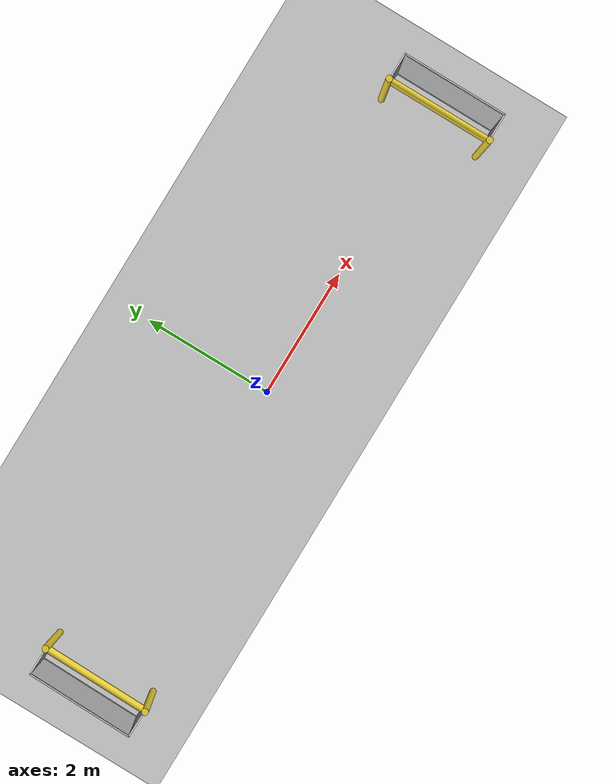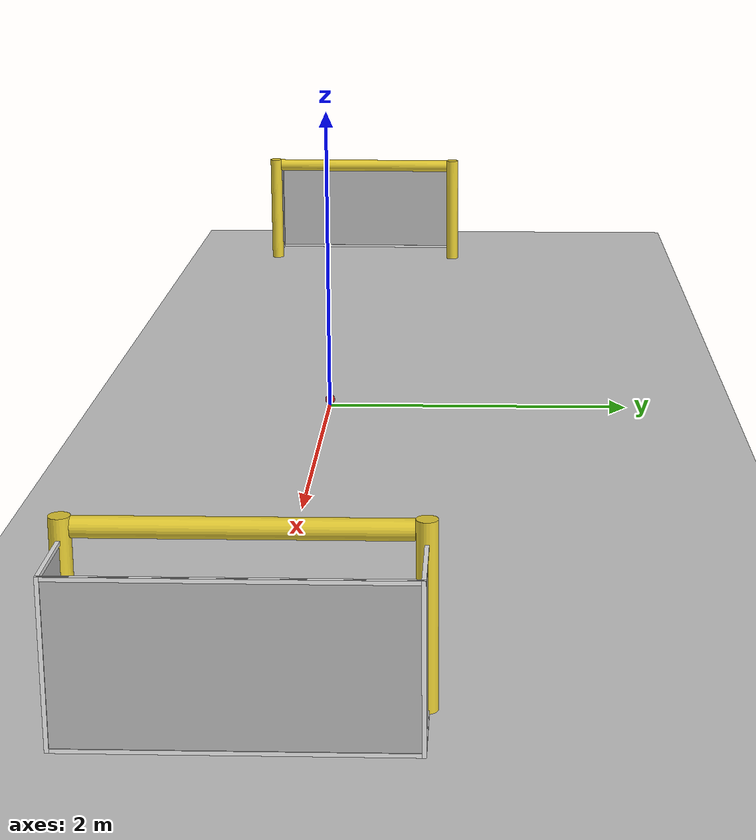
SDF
<sdf version="1.4">
 <world name="default">
  <light name="sun" type="directional">
   <pose>0 0 10 0 -0 0</pose>
   <diffuse>0.8 0.8 0.8 1</diffuse>
   <specular>0.2 0.2 0.2 1</specular>
   <attenuation>
    <range>1000</range>
    <constant>0.9</constant>
    <linear>0.01</linear>
    <quadratic>0.001</quadratic>
   </attenuation>
   <direction>-0.5 0.1 -0.9</direction>
  </light>
  <model name="ground_plane">
   <static>1</static>
   <link name="link">
    <collision name="collision">
     <geometry><plane><normal>0 0 1</normal><size>100 100</size></plane></geometry>
     <surface><friction><ode><mu>100</mu><mu2>50</mu2></ode></friction></surface>
    </collision>
    <visual name="visual">
     <cast_shadows>0</cast_shadows>
     <geometry><plane><normal>0 0 1</normal><size>100 100</size></plane></geometry>
     <material>
      <script><uri>file://media/materials/scripts/gazebo.material</uri><name>Gazebo/Grey</name></script>
     </material>
    </visual>
    <velocity_decay><linear>0</linear><angular>0</angular></velocity_decay>
   </link>
  </model>
  <physics type="ode">
   <max_step_size>0.001</max_step_size>
   <real_time_factor>1</real_time_factor>
   <real_time_update_rate>1000</real_time_update_rate>
   <gravity>0 0 -9.8</gravity>
  </physics>
  <scene><ambient>0.4 0.4 0.4 1</ambient><background>0.7 0.7 0.7 1</background><shadows>1</shadows></scene>
  <spherical_coordinates>
   <surface_model>EARTH_WGS84</surface_model>
   <latitude_deg>0</latitude_deg>
   <longitude_deg>0</longitude_deg>
   <elevation>0</elevation>
   <heading_deg>0</heading_deg>
  </spherical_coordinates>
  <model name="RoboCup 2014 SPL Goal">
   <static>1</static>
   <link name="left_post">
    <pose>0 0.8 0.45 0 -0 0</pose>
    <collision name="collision">
     <geometry><cylinder><radius>0.05</radius><length>0.9</length></cylinder></geometry>
    </collision>
    <visual name="visual">
     <geometry><cylinder><radius>0.05</radius><length>0.9</length></cylinder></geometry>
     <material>
      <script><uri>file://media/materials/scripts/gazebo.material</uri><name>Gazebo/ZincYellow</name></script>
     </material>
    </visual>
    <velocity_decay><linear>0</linear><angular>0</angular></velocity_decay>
   </link>
   <link name="left_support_horiz_lower">
    <pose>0.24 0.8 0.01 0 -0 0</pose>
    <collision name="collision"><geometry><box><size>0.38 0.02 0.02</size></box></geometry></collision>
    <visual name="visual">
     <geometry><box><size>0.38 0.02 0.02</size></box></geometry>
     <material>
      <script><uri>file://media/materials/scripts/gazebo.material</uri><name>Gazebo/White</name></script>
     </material>
    </visual>
    <velocity_decay><linear>0</linear><angular>0</angular></velocity_decay>
   </link>
   <link name="left_support_horiz_upper">
    <pose>0.24 0.8 0.79 0 -0 0</pose>
    <collision name="collision"><geometry><box><size>0.38 0.02 0.02</size></box></geometry></collision>
    <visual name="visual">
     <geometry><box><size>0.38 0.02 0.02</size></box></geometry>
     <material>
      <script><uri>file://media/materials/scripts/gazebo.material</uri><name>Gazebo/White</name></script>
     </material>
    </visual>
    <velocity_decay><linear>0</linear><angular>0</angular></velocity_decay>
   </link>
   <link name="left_support_vertical">
    <pose>0.44 0.8 0.4 3.14159 1.57079 3.14159</pose>
    <collision name="collision"><geometry><box><size>0.8 0.02 0.02</size></box></geometry></collision>
    <visual name="visual">
     <geometry><box><size>0.8 0.02 0.02</size></box></geometry>
     <material>
      <script><uri>file://media/materials/scripts/gazebo.material</uri><name>Gazebo/White</name></script>
     </material>
    </visual>
    <velocity_decay><linear>0</linear><angular>0</angular></velocity_decay>
   </link>
   <link name="right_support_horiz_lower">
    <pose>0.24 -0.8 0.01 0 -0 0</pose>
    <collision name="collision"><geometry><box><size>0.38 0.02 0.02</size></box></geometry></collision>
    <visual name="visual">
     <geometry><box><size>0.38 0.02 0.02</size></box></geometry>
     <material>
      <script><uri>file://media/materials/scripts/gazebo.material</uri><name>Gazebo/White</name></script>
     </material>
    </visual>
    <velocity_decay><linear>0</linear><angular>0</angular></velocity_decay>
   </link>
   <link name="right_support_horiz_upper">
    <pose>0.24 -0.8 0.79 0 -0 0</pose>
    <collision name="collision"><geometry><box><size>0.38 0.02 0.02</size></box></geometry></collision>
    <visual name="visual">
     <geometry><box><size>0.38 0.02 0.02</size></box></geometry>
     <material>
      <script><uri>file://media/materials/scripts/gazebo.material</uri><name>Gazebo/White</name></script>
     </material>
    </visual>
    <velocity_decay><linear>0</linear><angular>0</angular></velocity_decay>
   </link>
   <link name="right_support_vertical">
    <pose>0.44 -0.8 0.4 3.14159 1.57079 3.14159</pose>
    <collision name="collision"><geometry><box><size>0.8 0.02 0.02</size></box></geometry></collision>
    <visual name="visual">
     <geometry><box><size>0.8 0.02 0.02</size></box></geometry>
     <material>
      <script><uri>file://media/materials/scripts/gazebo.material</uri><name>Gazebo/White</name></script>
     </material>
    </visual>
    <velocity_decay><linear>0</linear><angular>0</angular></velocity_decay>
   </link>
   <link name="center_support_horiz_lower">
    <pose>0.44 0 0.01 3.14159 1.57079 3.14159</pose>
    <collision name="collision"><geometry><box><size>0.02 1.58 0.02</size></box></geometry></collision>
    <visual name="visual">
     <geometry><box><size>0.02 1.58 0.02</size></box></geometry>
     <material>
      <script><uri>file://media/materials/scripts/gazebo.material</uri><name>Gazebo/White</name></script>
     </material>
    </visual>
    <velocity_decay><linear>0</linear><angular>0</angular></velocity_decay>
   </link>
   <link name="center_support_horiz_upper">
    <pose>0.44 0 0.79 3.14159 1.57079 3.14159</pose>
    <collision name="collision"><geometry><box><size>0.02 1.58 0.02</size></box></geometry></collision>
    <visual name="visual">
     <geometry><box><size>0.02 1.58 0.02</size></box></geometry>
     <material>
      <script><uri>file://media/materials/scripts/gazebo.material</uri><name>Gazebo/White</name></script>
     </material>
    </visual>
    <velocity_decay><linear>0</linear><angular>0</angular></velocity_decay>
   </link>
   <link name="right_post">
    <pose>0 -0.8 0.45 0 -0 0</pose>
    <collision name="collision">
     <geometry><cylinder><radius>0.05</radius><length>0.9</length></cylinder></geometry>
    </collision>
    <visual name="visual">
     <geometry><cylinder><radius>0.05</radius><length>0.9</length></cylinder></geometry>
     <material>
      <script><uri>file://media/materials/scripts/gazebo.material</uri><name>Gazebo/ZincYellow</name></script>
     </material>
    </visual>
    <velocity_decay><linear>0</linear><angular>0</angular></velocity_decay>
   </link>
   <link name="crossbar">
    <pose>0 0 0.85 1.57 1.57 1.39418e-13</pose>
    <collision name="collision">
     <geometry><cylinder><radius>0.05</radius><length>1.5</length></cylinder></geometry>
    </collision>
    <visual name="visual">
     <geometry><cylinder><radius>0.05</radius><length>1.5</length></cylinder></geometry>
     <material>
      <script><uri>file://media/materials/scripts/gazebo.material</uri><name>Gazebo/ZincYellow</name></script>
     </material>
    </visual>
    <velocity_decay><linear>0</linear><angular>0</angular></velocity_decay>
   </link>
   <link name="center_net">
    <pose>0.44 0 0.4 0 -0 0</pose>
    <collision name="collision"><geometry><box><size>0.01 1.6 0.8</size></box></geometry></collision>
    <visual name="visual">
     <geometry><box><size>0.01 1.6 0.8</size></box></geometry>
     <material>
      <script>
       <uri>model://robocup09_spl_field/materials/scripts/</uri>
       <uri>model://robocup09_spl_field/materials/textures/</uri>
       <name>RoboCup/Net</name>
      </script>
     </material>
    </visual>
    <velocity_decay><linear>0</linear><angular>0</angular></velocity_decay>
   </link>
   <link name="left_net">
    <pose>0.24 0.8 0.4 0 -0 0</pose>
    <collision name="collision"><geometry><box><size>0.38 0.01 0.76</size></box></geometry></collision>
    <visual name="visual">
     <geometry><box><size>0.38 0.01 0.76</size></box></geometry>
     <material>
      <script>
       <uri>model://robocup09_spl_field/materials/scripts/</uri>
       <uri>model://robocup09_spl_field/materials/textures/</uri>
       <name>RoboCup/Net</name>
      </script>
     </material>
    </visual>
    <velocity_decay><linear>0</linear><angular>0</angular></velocity_decay>
   </link>
   <link name="right_net">
    <pose>0.24 -0.8 0.4 0 -0 0</pose>
    <collision name="collision"><geometry><box><size>0.38 0.01 0.76</size></box></geometry></collision>
    <visual name="visual">
     <geometry><box><size>0.38 0.01 0.76</size></box></geometry>
     <material>
      <script>
       <uri>model://robocup09_spl_field/materials/scripts/</uri>
       <uri>model://robocup09_spl_field/materials/textures/</uri>
       <name>RoboCup/Net</name>
      </script>
     </material>
    </visual>
    <velocity_decay><linear>0</linear><angular>0</angular></velocity_decay>
   </link>
   <pose>4.49819 0 0 0 -0 0</pose>
  </model>
  <model name="RoboCup 2014 SPL Goal_0">
   <static>1</static>
   <link name="left_post">
    <pose>0 0.8 0.45 0 -0 0</pose>
    <collision name="collision">
     <geometry><cylinder><radius>0.05</radius><length>0.9</length></cylinder></geometry>
    </collision>
    <visual name="visual">
     <geometry><cylinder><radius>0.05</radius><length>0.9</length></cylinder></geometry>
     <material>
      <script><uri>file://media/materials/scripts/gazebo.material</uri><name>Gazebo/ZincYellow</name></script>
     </material>
    </visual>
    <velocity_decay><linear>0</linear><angular>0</angular></velocity_decay>
   </link>
   <link name="left_support_horiz_lower">
    <pose>0.24 0.8 0.01 0 -0 0</pose>
    <collision name="collision"><geometry><box><size>0.38 0.02 0.02</size></box></geometry></collision>
    <visual name="visual">
     <geometry><box><size>0.38 0.02 0.02</size></box></geometry>
     <material>
      <script><uri>file://media/materials/scripts/gazebo.material</uri><name>Gazebo/White</name></script>
     </material>
    </visual>
    <velocity_decay><linear>0</linear><angular>0</angular></velocity_decay>
   </link>
   <link name="left_support_horiz_upper">
    <pose>0.24 0.8 0.79 0 -0 0</pose>
    <collision name="collision"><geometry><box><size>0.38 0.02 0.02</size></box></geometry></collision>
    <visual name="visual">
     <geometry><box><size>0.38 0.02 0.02</size></box></geometry>
     <material>
      <script><uri>file://media/materials/scripts/gazebo.material</uri><name>Gazebo/White</name></script>
     </material>
    </visual>
    <velocity_decay><linear>0</linear><angular>0</angular></velocity_decay>
   </link>
   <link name="left_support_vertical">
    <pose>0.44 0.8 0.4 3.14159 1.57079 3.14159</pose>
    <collision name="collision"><geometry><box><size>0.8 0.02 0.02</size></box></geometry></collision>
    <visual name="visual">
     <geometry><box><size>0.8 0.02 0.02</size></box></geometry>
     <material>
      <script><uri>file://media/materials/scripts/gazebo.material</uri><name>Gazebo/White</name></script>
     </material>
    </visual>
    <velocity_decay><linear>0</linear><angular>0</angular></velocity_decay>
   </link>
   <link name="right_support_horiz_lower">
    <pose>0.24 -0.8 0.01 0 -0 0</pose>
    <collision name="collision"><geometry><box><size>0.38 0.02 0.02</size></box></geometry></collision>
    <visual name="visual">
     <geometry><box><size>0.38 0.02 0.02</size></box></geometry>
     <material>
      <script><uri>file://media/materials/scripts/gazebo.material</uri><name>Gazebo/White</name></script>
     </material>
    </visual>
    <velocity_decay><linear>0</linear><angular>0</angular></velocity_decay>
   </link>
   <link name="right_support_horiz_upper">
    <pose>0.24 -0.8 0.79 0 -0 0</pose>
    <collision name="collision"><geometry><box><size>0.38 0.02 0.02</size></box></geometry></collision>
    <visual name="visual">
     <geometry><box><size>0.38 0.02 0.02</size></box></geometry>
     <material>
      <script><uri>file://media/materials/scripts/gazebo.material</uri><name>Gazebo/White</name></script>
     </material>
    </visual>
    <velocity_decay><linear>0</linear><angular>0</angular></velocity_decay>
   </link>
   <link name="right_support_vertical">
    <pose>0.44 -0.8 0.4 3.14159 1.57079 3.14159</pose>
    <collision name="collision"><geometry><box><size>0.8 0.02 0.02</size></box></geometry></collision>
    <visual name="visual">
     <geometry><box><size>0.8 0.02 0.02</size></box></geometry>
     <material>
      <script><uri>file://media/materials/scripts/gazebo.material</uri><name>Gazebo/White</name></script>
     </material>
    </visual>
    <velocity_decay><linear>0</linear><angular>0</angular></velocity_decay>
   </link>
   <link name="center_support_horiz_lower">
    <pose>0.44 0 0.01 3.14159 1.57079 3.14159</pose>
    <collision name="collision"><geometry><box><size>0.02 1.58 0.02</size></box></geometry></collision>
    <visual name="visual">
     <geometry><box><size>0.02 1.58 0.02</size></box></geometry>
     <material>
      <script><uri>file://media/materials/scripts/gazebo.material</uri><name>Gazebo/White</name></script>
     </material>
    </visual>
    <velocity_decay><linear>0</linear><angular>0</angular></velocity_decay>
   </link>
   <link name="center_support_horiz_upper">
    <pose>0.44 0 0.79 3.14159 1.57079 3.14159</pose>
    <collision name="collision"><geometry><box><size>0.02 1.58 0.02</size></box></geometry></collision>
    <visual name="visual">
     <geometry><box><size>0.02 1.58 0.02</size></box></geometry>
     <material>
      <script><uri>file://media/materials/scripts/gazebo.material</uri><name>Gazebo/White</name></script>
     </material>
    </visual>
    <velocity_decay><linear>0</linear><angular>0</angular></velocity_decay>
   </link>
   <link name="right_post">
    <pose>0 -0.8 0.45 0 -0 0</pose>
    <collision name="collision">
     <geometry><cylinder><radius>0.05</radius><length>0.9</length></cylinder></geometry>
    </collision>
    <visual name="visual">
     <geometry><cylinder><radius>0.05</radius><length>0.9</length></cylinder></geometry>
     <material>
      <script><uri>file://media/materials/scripts/gazebo.material</uri><name>Gazebo/ZincYellow</name></script>
     </material>
    </visual>
    <velocity_decay><linear>0</linear><angular>0</angular></velocity_decay>
   </link>
   <link name="crossbar">
    <pose>0 0 0.85 1.57 1.57 1.39418e-13</pose>
    <collision name="collision">
     <geometry><cylinder><radius>0.05</radius><length>1.5</length></cylinder></geometry>
    </collision>
    <visual name="visual">
     <geometry><cylinder><radius>0.05</radius><length>1.5</length></cylinder></geometry>
     <material>
      <script><uri>file://media/materials/scripts/gazebo.material</uri><name>Gazebo/ZincYellow</name></script>
     </material>
    </visual>
    <velocity_decay><linear>0</linear><angular>0</angular></velocity_decay>
   </link>
   <link name="center_net">
    <pose>0.44 0 0.4 0 -0 0</pose>
    <collision name="collision"><geometry><box><size>0.01 1.6 0.8</size></box></geometry></collision>
    <visual name="visual">
     <geometry><box><size>0.01 1.6 0.8</size></box></geometry>
     <material>
      <script>
       <uri>model://robocup09_spl_field/materials/scripts/</uri>
       <uri>model://robocup09_spl_field/materials/textures/</uri>
       <name>RoboCup/Net</name>
      </script>
     </material>
    </visual>
    <velocity_decay><linear>0</linear><angular>0</angular></velocity_decay>
   </link>
   <link name="left_net">
    <pose>0.24 0.8 0.4 0 -0 0</pose>
    <collision name="collision"><geometry><box><size>0.38 0.01 0.76</size></box></geometry></collision>
    <visual name="visual">
     <geometry><box><size>0.38 0.01 0.76</size></box></geometry>
     <material>
      <script>
       <uri>model://robocup09_spl_field/materials/scripts/</uri>
       <uri>model://robocup09_spl_field/materials/textures/</uri>
       <name>RoboCup/Net</name>
      </script>
     </material>
    </visual>
    <velocity_decay><linear>0</linear><angular>0</angular></velocity_decay>
   </link>
   <link name="right_net">
    <pose>0.24 -0.8 0.4 0 -0 0</pose>
    <collision name="collision"><geometry><box><size>0.38 0.01 0.76</size></box></geometry></collision>
    <visual name="visual">
     <geometry><box><size>0.38 0.01 0.76</size></box></geometry>
     <material>
      <script>
       <uri>model://robocup09_spl_field/materials/scripts/</uri>
       <uri>model://robocup09_spl_field/materials/textures/</uri>
       <name>RoboCup/Net</name>
      </script>
     </material>
    </visual>
    <velocity_decay><linear>0</linear><angular>0</angular></velocity_decay>
   </link>
   <pose>-4.55605 -0.050637 0 0 -0 3.12516</pose>
  </model>
  <model name="RoboCup SPL Ball">
   <static>0</static>
   <link name="ball">
    <inertial>
     <mass>0.0056</mass>
     <inertia>
      <ixx>2.37e-06</ixx>
      <iyy>2.37e-06</iyy>
      <izz>2.37e-06</izz>
      <ixy>0</ixy>
      <ixz>0</ixz>
      <iyz>0</iyz>
     </inertia>
    </inertial>
    <collision name="collision">
     <geometry><sphere><radius>0.0325</radius></sphere></geometry>
     <surface><friction><ode><mu>100</mu><mu2>50</mu2></ode></friction></surface>
    </collision>
    <visual name="visual">
     <geometry><sphere><radius>0.0325</radius></sphere></geometry>
     <material>
      <script><uri>file://media/materials/scripts/gazebo.material</uri><name>Gazebo/RedBright</name></script>
     </material>
    </visual>
    <velocity_decay><linear>0</linear><angular>0</angular></velocity_decay>
   </link>
   <pose>0 0 0.0425 0 -0 0</pose>
  </model>
 </world>
</sdf>
